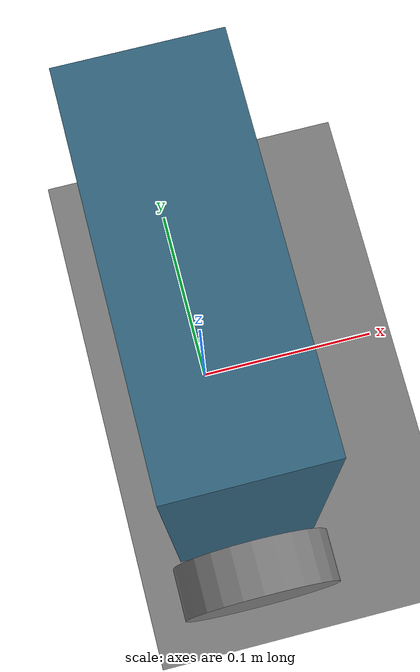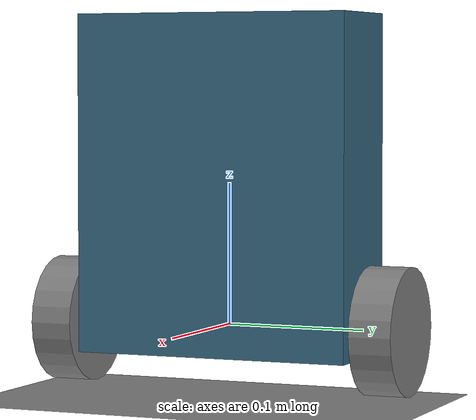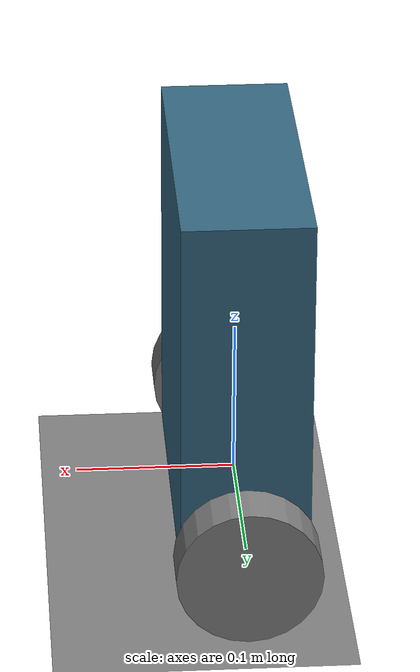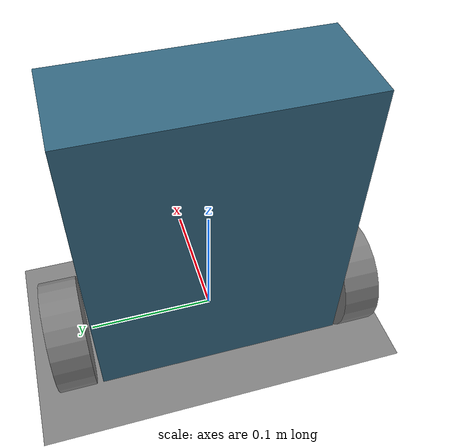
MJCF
<mujoco>
    <option density="1.204" viscosity="1.8e-5" integrator="implicit" />
    <visual>
        <global elevation="-10" />
    </visual>

    <asset>
        <texture name="grid" type="2d" builtin="checker" width="512" height="512" rgb2="0 0 0"
            rgb1="1 1 1" />
        <material name="grid" texture="grid" texrepeat="2 2" texuniform="true" reflectance=".6" />
    </asset>
    <worldbody>
        <geom name="ground" type="plane" size="5 5 .05" pos="0 0 -.05" material="grid" />
        <light pos="0 0 2" ambient="0.2 0.2 0.2"/>
        <light pos="0 1 2" ambient="0.2 0.2 0.2"/>
        <light pos="0 -1 2" ambient="0.2 0.2 0.2"/>
        <body name = "Torso" pos = "0 0 0.1">
            <geom name = "Torso" type = "box" size = "0.04 0.1 0.12" rgba = "0.2 0.4 0.5 1"/>
            <inertial pos="0 0 0" mass="0.72" fullinertia="0.00146 0.00096 0.0007 0 0 0"/>
            <freejoint name="root"/>
            <!-- Right Wheel-->
            <body name = "Right Wheel" pos = "0 -0.12 -0.1" euler = "90 0 0">
                <geom name = "Right Wheel" type = "cylinder" size = "0.045 0.015"/>
                <joint type="hinge" name = "Right Wheel Joint" axis = "0 0 1" pos = "0 0 0"/>
            </body>

            <body name = "Left Wheel" pos = "0 0.12 -0.1" euler = "90 0 0">
                <geom name = "Left Wheel" type = "cylinder" size = "0.045 0.015"/>
                <joint type="hinge" name = "Left Wheel Joint" axis = "0 0 1" pos = "0 0 0"/>
            </body>

        </body>
    </worldbody>
</mujoco>
